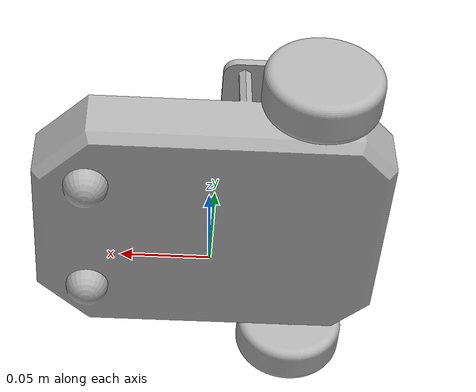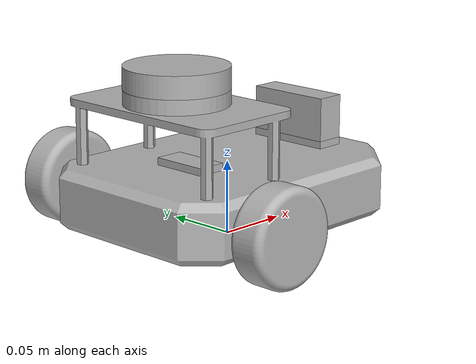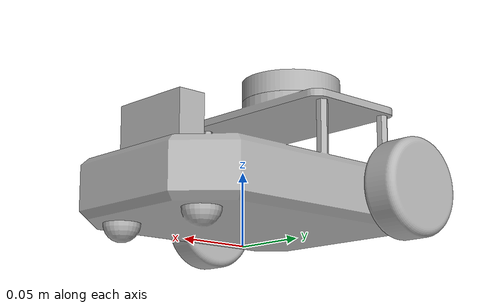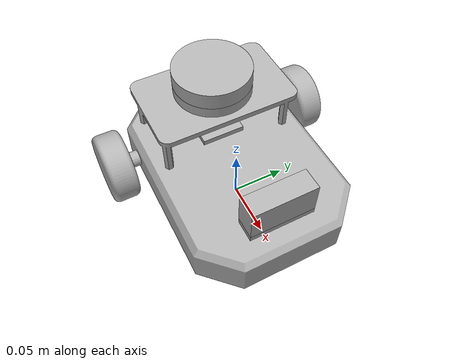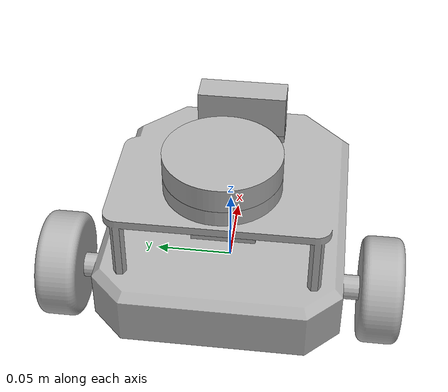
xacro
<?xml version="1.0" ?>
<robot name="bug_robot" xmlns:xacro="http://www.ros.org/wiki/xacro">

<material name="silver">
  <color rgba="0.700 0.700 0.700 1.000"/>
</material>

<link name="base_link">
  <inertial>
    <origin rpy="0 0 0" xyz="-0.00437523774417975 -4.383875965218967e-17 0.03741540303762595"/>
    <mass value="1.3194685135182431"/>
    <inertia ixx="0.002794" ixy="-0.0" ixz="0.000276" iyy="0.004569" iyz="-0.0" izz="0.00624"/>
  </inertial>
  <visual>
    <origin rpy="0 0 0" xyz="0 0 0"/>
    <geometry>
      <mesh filename="package://ros2_path_planning_robot/meshes/base_link2.stl" scale="0.001 0.001 0.001"/>
    </geometry>
    <material name="silver"/>
  </visual>
  <collision>
    <origin rpy="0 0 0" xyz="0 0 0"/>
    <geometry>
      <mesh filename="package://ros2_path_planning_robot/meshes/base_link2.stl" scale="0.001 0.001 0.001"/>
    </geometry>
  </collision>
</link>

<link name="left_wheel_1">
  <inertial>
    <origin rpy="0 0 0" xyz="0.0 -0.012499999999999997 0.0"/>
    <mass value="0.07518292500997302"/>
    <inertia ixx="2.3e-05" ixy="0.0" ixz="0.0" iyy="3.9e-05" iyz="-0.0" izz="2.3e-05"/>
  </inertial>
  <visual>
    <origin rpy="0 0 0" xyz="0.055 0.085 -0.0325"/>
    <geometry>
      <mesh filename="package://ros2_path_planning_robot/meshes/left_wheel_1.stl" scale="0.001 0.001 0.001"/>
    </geometry>
    <material name="silver"/>
  </visual>
  <collision>
    <origin rpy="0 0 0" xyz="0.055 0.085 -0.0325"/>
    <geometry>
      <mesh filename="package://ros2_path_planning_robot/meshes/left_wheel_1.stl" scale="0.001 0.001 0.001"/>
    </geometry>
  </collision>
</link>

<link name="right_wheel_1">
  <inertial>
    <origin rpy="0 0 0" xyz="6.938893903907228e-18 0.012499999999999997 0.0"/>
    <mass value="0.07518292500997299"/>
    <inertia ixx="2.3e-05" ixy="0.0" ixz="0.0" iyy="3.9e-05" iyz="0.0" izz="2.3e-05"/>
  </inertial>
  <visual>
    <origin rpy="0 0 0" xyz="0.055 -0.085 -0.0325"/>
    <geometry>
      <mesh filename="package://ros2_path_planning_robot/meshes/right_wheel_1.stl" scale="0.001 0.001 0.001"/>
    </geometry>
    <material name="silver"/>
  </visual>
  <collision>
    <origin rpy="0 0 0" xyz="0.055 -0.085 -0.0325"/>
    <geometry>
      <mesh filename="package://ros2_path_planning_robot/meshes/right_wheel_1.stl" scale="0.001 0.001 0.001"/>
    </geometry>
  </collision>
</link>

<link name="lidar_1">
  <inertial>
    <origin rpy="0 0 0" xyz="-2.2981640954156113e-07 0.0 0.007499999999999979"/>
    <mass value="0.07966293571340313"/>
    <inertia ixx="2.6e-05" ixy="0.0" ixz="0.0" iyy="2.6e-05" iyz="-0.0" izz="4.9e-05"/>
  </inertial>
  <visual>
    <origin rpy="0 0 0" xyz="0.046503 -0.0 -0.1075"/>
    <geometry>
      <mesh filename="package://ros2_path_planning_robot/meshes/lidar_1.stl" scale="0.001 0.001 0.001"/>
    </geometry>
    <material name="silver"/>
  </visual>
  <collision>
    <origin rpy="0 0 0" xyz="0.046503 -0.0 -0.1075"/>
    <geometry>
      <mesh filename="package://ros2_path_planning_robot/meshes/lidar_1.stl" scale="0.001 0.001 0.001"/>
    </geometry>
  </collision>
</link>

<link name="camera_1">
  <inertial>
    <origin rpy="0 0 0" xyz="0.0013912758702941952 -6.565133329183849e-05 -0.0003892293542707703"/>
    <mass value="0.006742869651497879"/>
    <inertia ixx="0.0" ixy="0.0" ixz="0.0" iyy="0.0" iyz="0.0" izz="0.0"/>
  </inertial>
  <visual>
    <origin rpy="0 0 0" xyz="-0.084 -0.0 -0.065"/>
    <geometry>
      <mesh filename="package://ros2_path_planning_robot/meshes/camera_1.stl" scale="0.001 0.001 0.001"/>
    </geometry>
    <material name="silver"/>
  </visual>
  <collision>
    <origin rpy="0 0 0" xyz="-0.084 -0.0 -0.065"/>
    <geometry>
      <mesh filename="package://ros2_path_planning_robot/meshes/camera_1.stl" scale="0.001 0.001 0.001"/>
    </geometry>
  </collision>
</link>

<link name="imu_1">
  <inertial>
    <origin xyz="-0.13 1.232595164407831e-33 0.0025000000000000022" rpy="0 0 0"/>
    <mass value="0.0314"/>
    <inertia ixx="4e-06" iyy="1e-06" izz="5e-06" ixy="-0.0" iyz="-0.0" ixz="-0.0"/>
  </inertial>
  <visual>
    <origin xyz="-0.095 -0.0 -0.0525" rpy="0 0 0"/>
    <geometry>
      <mesh filename="package://ros2_path_planning_robot/meshes/imu_1.stl" scale="0.001 0.001 0.001"/>
    </geometry>
    <material name="silver"/>
  </visual>
  <collision>
    <origin xyz="-0.095 -0.0 -0.0525" rpy="0 0 0"/>
    <geometry>
      <mesh filename="package://ros2_path_planning_robot/meshes/imu_1.stl" scale="0.001 0.001 0.001"/>
    </geometry>
  </collision>
</link>

<joint name="left_joint" type="continuous">
  <origin rpy="0 0 0" xyz="-0.055 -0.085 0.0325"/>
  <parent link="base_link"/>
  <child link="left_wheel_1"/>
  <axis xyz="0.0 1.0 0.0"/>
</joint>

<joint name="right_joint" type="continuous">
  <origin rpy="0 0 0" xyz="-0.055 0.085 0.0325"/>
  <parent link="base_link"/>
  <child link="right_wheel_1"/>
  <axis xyz="0.0 1.0 0.0"/>
</joint>

<joint name="lidar_joint" type="fixed">
  <origin rpy="0 0 0" xyz="-0.046503 0.0 0.1075"/>
  <parent link="base_link"/>
  <child link="lidar_1"/>
</joint>

<joint name="camera_joint" type="fixed">
  <origin rpy="0 0 0" xyz="0.084 0.0 0.065"/>
  <parent link="base_link"/>
  <child link="camera_1"/>
</joint>

<joint name="imu_joint" type="fixed">
  <origin xyz="0.095 0.0 0.0525" rpy="0 0 0"/>
  <parent link="base_link"/>
  <child link="imu_1"/>
</joint>

  <gazebo>
    <plugin filename="libgazebo_ros_diff_drive.so" name="gazebo_base_controller">
      <odometry_frame>odom</odometry_frame>
      <commandTopic>cmd_vel</commandTopic>
      <publish_odom>true</publish_odom>
      <publish_odom_tf>true</publish_odom_tf>
      <update_rate>15.0</update_rate>
      <left_joint>right_joint</left_joint>
      <right_joint>left_joint</right_joint>
      <wheel_separation>0.150</wheel_separation>
      <wheel_diameter>0.065</wheel_diameter>
      <max_wheel_acceleration>0.7</max_wheel_acceleration>
      <robotBaseFrame>base_link</robotBaseFrame>
    </plugin>
  </gazebo>

  <gazebo reference="lidar_1">
    <sensor name="lidar" type="ray">
      <always_on>true</always_on>
      <visualize>true</visualize>
      <update_rate>15</update_rate>
      <ray>
        <scan>
          <horizontal>
            <samples>720</samples>
            <resolution>1</resolution>
            <min_angle>-3.1415</min_angle>
            <max_angle>3.1415</max_angle>
          </horizontal>
        </scan>
        <range>
          <min>0.35</min>
          <max>15.0</max>
          <resolution>0.01</resolution>
        </range>
        <noise>
          <type>gaussian</type>
          <mean>0.0</mean>
          <stddev>0.01</stddev>
        </noise>
      </ray>
      <plugin name="scan" filename="libgazebo_ros_ray_sensor.so">
        <ros>
          <remapping>~/out:=scan</remapping>
        </ros>
        <output_type>sensor_msgs/LaserScan</output_type>
        <frame_name>laser_link</frame_name>
      </plugin>
    </sensor>
  </gazebo>

  <gazebo reference="imu_1">
    <sensor name="imu_sensor" type="imu">
    <plugin filename="libgazebo_ros_imu_sensor.so" name="imu_plugin">
        <ros>
          <namespace>/data</namespace>
          <remapping>~/out:=imu</remapping>
        </ros>
        <initial_orientation_as_reference>false</initial_orientation_as_reference>
      </plugin>
      <always_on>true</always_on>
      <update_rate>100</update_rate>
      <visualize>true</visualize>
      <imu>
        <angular_velocity>
          <x>
            <noise type="gaussian">
              <mean>0.0</mean>
              <stddev>2e-4</stddev>
              <bias_mean>0.0000075</bias_mean>
              <bias_stddev>0.0000008</bias_stddev>
            </noise>
          </x>
          <y>
            <noise type="gaussian">
              <mean>0.0</mean>
              <stddev>2e-4</stddev>
              <bias_mean>0.0000075</bias_mean>
              <bias_stddev>0.0000008</bias_stddev>
            </noise>
          </y>
          <z>
            <noise type="gaussian">
              <mean>0.0</mean>
              <stddev>2e-4</stddev>
              <bias_mean>0.0000075</bias_mean>
              <bias_stddev>0.0000008</bias_stddev>
            </noise>
          </z>
        </angular_velocity>
        <linear_acceleration>
          <x>
            <noise type="gaussian">
              <mean>0.0</mean>
              <stddev>1.7e-2</stddev>
              <bias_mean>0.1</bias_mean>
              <bias_stddev>0.001</bias_stddev>
            </noise>
          </x>
          <y>
            <noise type="gaussian">
              <mean>0.0</mean>
              <stddev>1.7e-2</stddev>
              <bias_mean>0.1</bias_mean>
              <bias_stddev>0.001</bias_stddev>
            </noise>
          </y>
          <z>
            <noise type="gaussian">
              <mean>0.0</mean>
              <stddev>1.7e-2</stddev>
              <bias_mean>0.1</bias_mean>
              <bias_stddev>0.001</bias_stddev>
            </noise>
          </z>
        </linear_acceleration>
      </imu>
    </sensor>
  </gazebo>

  <gazebo reference="base_link">
    <material>Gazebo/Orange</material>
    <mu1>0.2</mu1>
    <mu2>0.2</mu2>
    <selfCollide>true</selfCollide>
    <gravity>true</gravity>
  </gazebo>
  <gazebo reference="left_wheel_1">
    <material>Gazebo/Black</material>
    <mu1>100</mu1>
    <mu2>100</mu2>
    <selfCollide>true</selfCollide>
  </gazebo>
  <gazebo reference="right_wheel_1">
    <material>Gazebo/Black</material>
    <mu1>100</mu1>
    <mu2>100</mu2>
    <selfCollide>true</selfCollide>
  </gazebo>
  <gazebo reference="lidar_1">
    <material>Gazebo/White</material>
    <mu1>0.2</mu1>
    <mu2>0.2</mu2>
    <selfCollide>true</selfCollide>
  </gazebo>
  <gazebo reference="camera_1">
    <material>Gazebo/White</material>
    <mu1>0.2</mu1>
    <mu2>0.2</mu2>
    <selfCollide>true</selfCollide>
  </gazebo>
  <gazebo reference="imu_1">
    <material>Gazebo/White</material>
    <mu1>0.2</mu1>
    <mu2>0.2</mu2>
    <selfCollide>true</selfCollide>
  </gazebo>

</robot>
